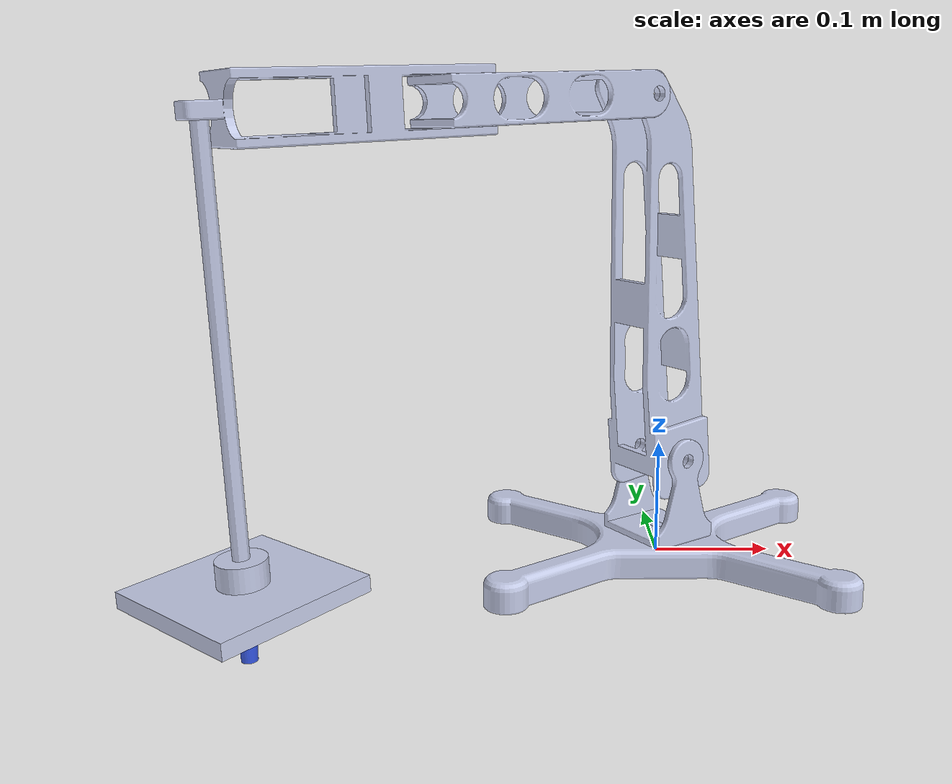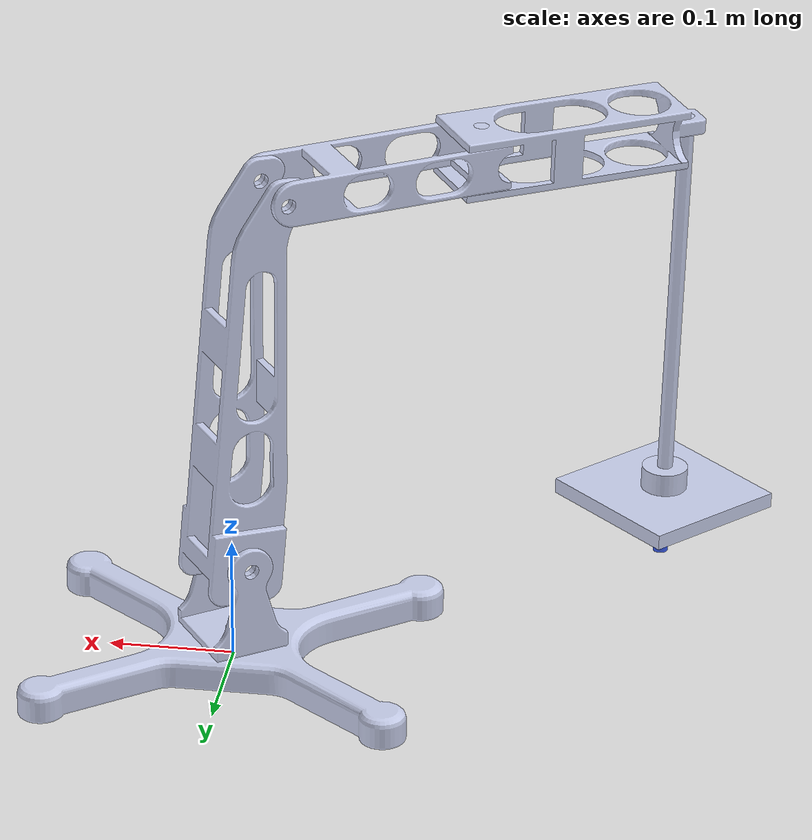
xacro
<?xml version="1.0"?>
<robot xmlns:xacro="http://www.ros.org/wiki/xacro" name="capstone">

    <!-- ✅ Include all component files -->
    <xacro:include filename="$(find capstone)/urdf/includes/materials.xacro"/>
    <xacro:include filename="$(find capstone)/urdf/includes/base.xacro"/>
    <xacro:include filename="$(find capstone)/urdf/includes/servo_joint.xacro"/>
    <xacro:include filename="$(find capstone)/urdf/includes/arm_1.xacro"/>
    <xacro:include filename="$(find capstone)/urdf/includes/arm_2.xacro"/>
    <xacro:include filename="$(find capstone)/urdf/includes/end.xacro"/>
    <xacro:include filename="$(find capstone)/urdf/includes/laproscope.xacro"/>
    <xacro:include filename="$(find capstone)/urdf/includes/laproholder.xacro"/>
    <xacro:include filename="$(find capstone)/urdf/includes/stomach.xacro"/>
    <xacro:include filename="$(find capstone)/urdf/includes/camera.xacro"/>
    <xacro:include filename="$(find capstone)/urdf/includes/joints.xacro"/>

    <!-- ✅ Define global properties -->
    <xacro:property name="joint6_upper_limit" value="0.28"/>

    <!-- ✅ Instantiate all components -->
    <base_link/>
    <servo_joint_link/>
    <arm_1_link/>
    <arm_2_link/>
    <end_link/>
    <laproscope_link/>
    <laproholder_link/>
    <stomach_link/>
    <camera_link/>

    <!-- ✅ Instantiate all joints -->
    <all_joints/>

</robot>

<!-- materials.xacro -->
<robot xmlns:xacro="http://www.ros.org/wiki/xacro">
    <xacro:property name="default_color" value="0.792156862745098 0.819607843137255 0.933333333333333 1"/>

    <material name="base_color">
        <color rgba="${default_color}"/>
    </material>
    <material name="servo_color">
        <color rgba="${default_color}"/>
    </material>
    <material name="arm_1_color">
        <color rgba="${default_color}"/>
    </material>
    <material name="arm_2_color">
        <color rgba="${default_color}"/>
    </material>
    <material name="end_color">
        <color rgba="${default_color}"/>
    </material>
    <material name="laproscope_color">
        <color rgba="${default_color}"/>
    </material>
    <material name="holder_color">
        <color rgba="${default_color}"/>
    </material>
    <material name="stomach_color">
        <color rgba="${default_color}"/>
    </material>
    <material name="camera_lens_color">
        <color rgba="0.12 0.28 0.95 0.85"/>
    </material>
</robot>

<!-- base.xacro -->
<robot xmlns:xacro="http://www.ros.org/wiki/xacro">

    <xacro:macro name="base_link">
        <link name="base">
            <inertial>
                <origin xyz="3.83329097276627E-17 -4.29355650579034E-17 0.00492622466159051" rpy="0 0 0"/>
                <mass value="0.595685431532399"/>
                <inertia ixx="0.00234455610349601" ixy="4.4720262696295E-11" ixz="7.63618511306938E-20"
                         iyy="0.00402765803889398" iyz="-1.50621344482668E-19" izz="0.00631166014571594"/>
            </inertial>
            <visual>
                <geometry>
                    <mesh filename="package://capstone/meshes/base/base.obj"/>
                </geometry>
                <material name="base_color"/>
            </visual>
            <collision>
                <geometry>
                    <mesh filename="package://capstone/meshes/base/base.obj"/>
                </geometry>
            </collision>
        </link>
    </xacro:macro>

</robot>

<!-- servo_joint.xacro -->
<robot xmlns:xacro="http://www.ros.org/wiki/xacro">

    <xacro:macro name="servo_joint_link">
        <link name="servo_joint">
            <inertial>
                <origin xyz="1.9495939582893E-07 5.41191680179675E-07 0.0203725729535382" rpy="0 0 0"/>
                <mass value="0.0668872208716784"/>
                <inertia ixx="9.60027536903093E-05" ixy="2.05989968635812E-05" ixz="4.93673327576366E-10"
                         iyy="8.05860489016923E-05" iyz="1.54361301454689E-09" izz="7.44832233305413E-05"/>
            </inertial>
            <visual>
                <geometry>
                    <mesh filename="package://capstone/meshes/servo_joint/servo_joint.obj"/>
                </geometry>
                <material name="servo_color"/>
            </visual>
            <collision>
                <geometry>
                    <mesh filename="package://capstone/meshes/servo_joint/servo_joint.obj"/>
                </geometry>
            </collision>
        </link>
    </xacro:macro>

</robot>

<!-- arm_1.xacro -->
<robot xmlns:xacro="http://www.ros.org/wiki/xacro">

    <xacro:macro name="arm_1_link">
        <link name="arm_1">
            <inertial>
                <origin xyz="-0.0276551103097058 0.0264569623642856 0.113736450909705" rpy="0 0 0"/>
                <mass value="0.220123710265403"/>
                <inertia ixx="0.00260859939855862" ixy="1.52275205012602E-06" ixz="0.000155386932363509"
                         iyy="0.00260746601467161" iyz="0.000107779039864334" izz="0.000212520040930073"/>
            </inertial>
            <visual>
                <geometry>
                    <mesh filename="package://capstone/meshes/arm_1/arm_1.obj"/>
                </geometry>
                <material name="arm_1_color"/>
            </visual>
            <collision>
                <geometry>
                    <mesh filename="package://capstone/meshes/arm_1/arm_1.obj"/>
                </geometry>
            </collision>
        </link>
    </xacro:macro>

</robot>

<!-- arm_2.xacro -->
<robot xmlns:xacro="http://www.ros.org/wiki/xacro">

    <xacro:macro name="arm_2_link">
        <link name="arm_2">
            <inertial>
                <origin xyz="-0.0969237277353411 -0.0291865197737133 -0.0040109492904789" rpy="0 0 0"/>
                <mass value="0.0905770113739791"/>
                <inertia ixx="0.000181847676834499" ixy="-0.000159894636393793" ixz="-1.23882956634763E-05"
                         iyy="0.000301577324525151" iyz="-8.59097137039548E-06" izz="0.000449226081148877"/>
            </inertial>
            <visual>
                <geometry>
                    <mesh filename="package://capstone/meshes/arm_2/arm_2.obj"/>
                </geometry>
                <material name="arm_2_color"/>
            </visual>
            <collision>
                <geometry>
                    <mesh filename="package://capstone/meshes/arm_2/arm_2.obj"/>
                </geometry>
            </collision>
        </link>
    </xacro:macro>

</robot>

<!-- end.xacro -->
<robot xmlns:xacro="http://www.ros.org/wiki/xacro">

    <xacro:macro name="end_link">
        <link name="end">
            <inertial>
                <origin xyz="-0.00262568629911712 -0.075812714634457 -0.0250038194154321" rpy="0 0 0"/>
                <mass value="0.0983467579147765"/>
                <inertia ixx="0.000493277343932831" ixy="-1.41888900187869E-05" ixz="-4.3683485091196E-10"
                         iyy="8.40866267388216E-05" iyz="-2.36804637109331E-08" izz="0.00050224319910371"/>
            </inertial>
            <visual>
                <geometry>
                    <mesh filename="package://capstone/meshes/end/end.obj"/>
                </geometry>
                <material name="end_color"/>
            </visual>
            <collision>
                <geometry>
                    <mesh filename="package://capstone/meshes/end/end.obj"/>
                </geometry>
            </collision>
        </link>
    </xacro:macro>

</robot>

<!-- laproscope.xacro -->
<robot xmlns:xacro="http://www.ros.org/wiki/xacro">

    <xacro:macro name="laproscope_link">
        <link name="laproscope">
            <inertial>
                <origin xyz="0.00671418967516202 0.00465676454508096 -0.187321873258244" rpy="0 0 0"/>
                <mass value="0.0460194236365692"/>
                <inertia ixx="0.000539048581644189" ixy="-4.79220891819611E-07" ixz="1.92770225531289E-05"
                         iyy="0.000539407155654698" iyz="1.33699760512008E-05" izz="1.92213791900841E-06"/>
            </inertial>
            <visual>
                <geometry>
                    <mesh filename="package://capstone/meshes/laproscope/laproscope.obj"/>
                </geometry>
                <material name="laproscope_color"/>
            </visual>
            <collision>
                <geometry>
                    <mesh filename="package://capstone/meshes/laproscope/laproscope.obj"/>
                </geometry>
            </collision>
        </link>
    </xacro:macro>

</robot>

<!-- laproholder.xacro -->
<robot xmlns:xacro="http://www.ros.org/wiki/xacro">

    <xacro:macro name="laproholder_link">
        <link name="laproholder">
            <inertial>
                <origin xyz="-0.00143776220691183 -0.000997189592985503 0.0401127050215697" rpy="0 0 0"/>
                <mass value="0.0322135965455985"/>
                <inertia ixx="1.08616654517452E-05" ixy="-5.27011656320165E-09" ixz="2.11994421738786E-07"
                         iyy="1.08656087832322E-05" iyz="1.47033097763118E-07" izz="4.95474650073436E-06"/>
            </inertial>
            <visual>
                <geometry>
                    <mesh filename="package://capstone/meshes/laproholder/laproholder.obj"/>
                </geometry>
                <material name="holder_color"/>
            </visual>
            <collision>
                <geometry>
                    <mesh filename="package://capstone/meshes/laproholder/laproholder.obj"/>
                </geometry>
            </collision>
        </link>
    </xacro:macro>

</robot>

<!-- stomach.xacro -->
<robot xmlns:xacro="http://www.ros.org/wiki/xacro">

    <xacro:macro name="stomach_link">
        <link name="stomach">
            <inertial>
                <origin xyz="0.000223806322506737 0.00015522548483618 -0.00624406244194294" rpy="0 0 0"/>
                <mass value="0.189176576848457"/>
                <inertia ixx="0.000256859339323337" ixy="2.23770914099955E-07" ixz="-9.00135413850748E-06"
                         iyy="0.000256691904147881" iyz="-6.24307456862418E-06" izz="0.000507669096058448"/>
            </inertial>
            <visual>
                <geometry>
                    <mesh filename="package://capstone/meshes/stomach/stomach.obj"/>
                </geometry>
                <material name="stomach_color"/>
            </visual>
            <collision>
                <geometry>
                    <mesh filename="package://capstone/meshes/stomach/stomach.obj"/>
                </geometry>
            </collision>
        </link>
    </xacro:macro>

</robot>

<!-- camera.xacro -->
<robot xmlns:xacro="http://www.ros.org/wiki/xacro">

    <xacro:macro name="camera_link">
        <link name="camera_link">
            <inertial>
                <origin xyz="0 0 -0.008" rpy="0 0 0"/>
                <mass value="0.008"/>
                <inertia ixx="8e-06" ixy="0" ixz="0"
                         iyy="8e-06" iyz="0" izz="8e-06"/>
            </inertial>

            <visual>
                <origin xyz="0 0 -0.008" rpy="0 0 0"/>
                <geometry>
                    <cylinder length="0.016" radius="0.006"/>
                </geometry>
                <material name="camera_lens_color"/>
            </visual>

            <collision>
                <origin xyz="0 0 -0.008" rpy="0 0 0"/>
                <geometry>
                    <cylinder length="0.016" radius="0.006"/>
                </geometry>
            </collision>
        </link>
    </xacro:macro>

</robot>

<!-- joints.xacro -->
<robot xmlns:xacro="http://www.ros.org/wiki/xacro">

    <xacro:macro name="all_joints">
        <!-- ✅ Joint 1 -->
        <joint name="joint_1" type="revolute">
            <origin xyz="0 0 0.0231695161478648" rpy="0 0 0"/>
            <parent link="base"/>
            <child link="servo_joint"/>
            <axis xyz="0 2.41936672379505E-05 0.999999999668945"/>
            <limit lower="0" upper="6.28" effort="200" velocity="1"/>
        </joint>

        <!-- ✅ Joint 2 -->
        <joint name="joint_2" type="revolute">
            <origin xyz="0.0213719544798081 -0.0308143894150592 0.0693552294789635" rpy="0 0 0"/>
            <parent link="servo_joint"/>
            <child link="arm_1"/>
            <axis xyz="-0.569911281928333 0.821706231405606 0"/>
            <limit lower="-1.57" upper="1.57" effort="100" velocity="0.5"/>
        </joint>

        <!-- ✅ Joint 3 -->
        <joint name="joint_3" type="revolute">
            <origin xyz="-0.0347334401061548 -0.0164839681859413 0.31039691236493" rpy="0 0 0"/>
            <parent link="arm_1"/>
            <child link="arm_2"/>
            <axis xyz="-0.569911281928334 0.821706231405606 0"/>
            <limit lower="-0.78" upper="1.57" effort="100" velocity="0.5"/>
        </joint>

        <!-- ✅ Joint 4 -->
        <joint name="joint_4" type="revolute">
            <origin xyz="-0.167497718367323 -0.0781408694990144 0.0170775834262024"
                    rpy="0.0435926541309888 0 -0.964398443738339"/>
            <parent link="arm_2"/>
            <child link="end"/>
            <axis xyz="0 0 1"/>
            <limit lower="-1.57" upper="1.57" effort="100" velocity="0.5"/>
        </joint>

        <!-- ✅ Joint 5 -->
        <joint name="joint_5" type="fixed">
            <origin xyz="-0.0062736460030775 -0.181141391917552 -0.0187500000000003"
                    rpy="-0.0248545752789515 0.0358166689151097 0.963953269192368"/>
            <parent link="end"/>
            <child link="laproscope"/>
        </joint>

        <!-- ✅ Joint 6 (Prismatic) -->
        <joint name="joint_6" type="prismatic">
            <origin xyz="0.0134283793503241 0.00931352909016181 -0.374643746516488" rpy="0 0 0"/>
            <parent link="laproscope"/>
            <child link="laproholder"/>
            <axis xyz="-0.0358090116008643 -0.0248360775737648 0.999049990710635"/>
            <limit lower="0" upper="${joint6_upper_limit}" effort="100" velocity="5"/>
        </joint>

        <!-- ✅ Joint 7 -->
        <joint name="joint_7" type="fixed">
            <origin xyz="-0.00153367920227288 -0.00106371480077255 0.0427887317824018" rpy="0 0 0"/>
            <parent link="laproholder"/>
            <child link="stomach"/>
        </joint>

        <!-- ✅ Joint 8: Camera -->
        <joint name="joint_8" type="fixed">
            <origin xyz="0.0134283793503241 0.00931352909016181 -0.374643746516488" rpy="0 0 0"/>
            <parent link="laproscope"/>
            <child link="camera_link"/>
        </joint>
    </xacro:macro>

</robot>
